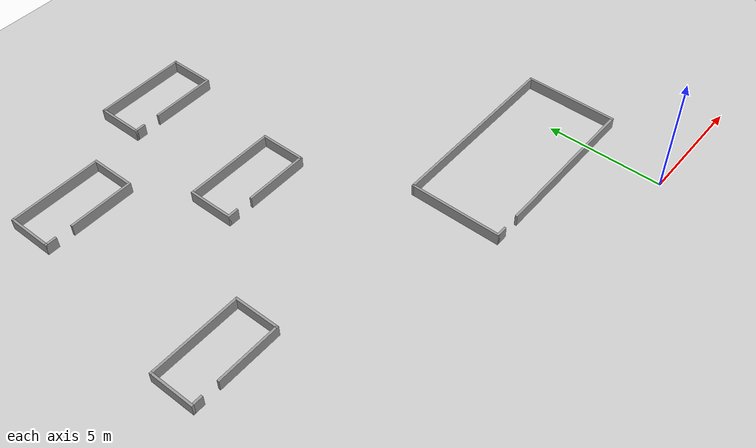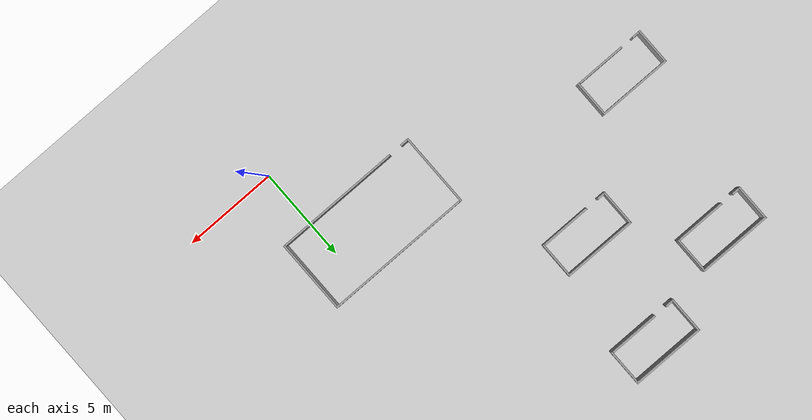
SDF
<sdf version="1.6">
 <world name="default">
  <model name="ground_plane">
   <static>1</static>
   <link name="link">
    <collision name="collision">
     <geometry><plane><normal>0 0 1</normal><size>40 40</size></plane></geometry>
     <surface>
      <contact><collide_bitmask>65535</collide_bitmask></contact>
      <friction><ode><mu>100</mu><mu2>50</mu2></ode></friction>
     </surface>
     <max_contacts>15</max_contacts>
    </collision>
    <visual name="visual">
     <cast_shadows>0</cast_shadows>
     <geometry><plane><normal>0 0 1</normal><size>40 40</size></plane></geometry>
     <material>
      <script><uri>file://media/materials/scripts/gazebo.material</uri><name>Gazebo/Grey</name></script>
     </material>
    </visual>
   </link>
  </model>
  <model name="shape2">
   <pose>-16.3 7.5 0 0 -0 0</pose>
   <link name="Wall_0">
    <collision name="Wall_0_Collision">
     <geometry><box><size>3.98685 0.1 0.5</size></box></geometry>
     <pose>0 0 0.25 0 -0 0</pose>
    </collision>
    <visual name="Wall_0_Visual">
     <pose>0 0 0.25 0 -0 0</pose>
     <geometry><box><size>3.98685 0.1 0.5</size></box></geometry>
     <material>
      <script><uri>file://media/materials/scripts/gazebo.material</uri><name>Gazebo/Grey</name></script>
      <ambient>1 1 1 1</ambient>
     </material>
     <meta><layer>0</layer></meta>
    </visual>
    <pose>0.003288 0.95 0 0 -0 0</pose>
   </link>
   <link name="Wall_1">
    <collision name="Wall_1_Collision">
     <geometry><box><size>2 0.1 0.5</size></box></geometry>
     <pose>0 0 0.25 0 -0 0</pose>
    </collision>
    <visual name="Wall_1_Visual">
     <pose>0 0 0.25 0 -0 0</pose>
     <geometry><box><size>2 0.1 0.5</size></box></geometry>
     <material>
      <script><uri>file://media/materials/scripts/gazebo.material</uri><name>Gazebo/Grey</name></script>
      <ambient>1 1 1 1</ambient>
     </material>
     <meta><layer>0</layer></meta>
    </visual>
    <pose>1.94671 0 0 0 -0 -1.5708</pose>
   </link>
   <link name="Wall_2">
    <collision name="Wall_2_Collision">
     <geometry><box><size>2.8 0.1 0.5</size></box></geometry>
     <pose>0 0 0.25 0 -0 0</pose>
    </collision>
    <visual name="Wall_2_Visual">
     <pose>0 0 0.25 0 -0 0</pose>
     <geometry><box><size>2.8 0.1 0.5</size></box></geometry>
     <material>
      <script><uri>file://media/materials/scripts/gazebo.material</uri><name>Gazebo/Grey</name></script>
      <ambient>1 1 1 1</ambient>
     </material>
     <meta><layer>0</layer></meta>
    </visual>
    <pose>0.596712 -0.95 0 0 -0 3.14159</pose>
   </link>
   <link name="Wall_4">
    <collision name="Wall_4_Collision">
     <geometry><box><size>2 0.1 0.5</size></box></geometry>
     <pose>0 0 0.25 0 -0 0</pose>
    </collision>
    <visual name="Wall_4_Visual">
     <pose>0 0 0.25 0 -0 0</pose>
     <geometry><box><size>2 0.1 0.5</size></box></geometry>
     <material>
      <script><uri>file://media/materials/scripts/gazebo.material</uri><name>Gazebo/Grey</name></script>
      <ambient>1 1 1 1</ambient>
     </material>
     <meta><layer>0</layer></meta>
    </visual>
    <pose>-1.94671 0 0 0 -0 -1.5708</pose>
   </link>
   <link name="Wall_5">
    <collision name="Wall_5_Collision">
     <geometry><box><size>0.5 0.1 0.5</size></box></geometry>
     <pose>0 0 0.25 0 -0 0</pose>
    </collision>
    <visual name="Wall_5_Visual">
     <pose>0 0 0.25 0 -0 0</pose>
     <geometry><box><size>0.5 0.1 0.5</size></box></geometry>
     <material>
      <script><uri>file://media/materials/scripts/gazebo.material</uri><name>Gazebo/Grey</name></script>
      <ambient>1 1 1 1</ambient>
     </material>
     <meta><layer>0</layer></meta>
    </visual>
    <pose>-1.74671 -0.95 0 0 -0 0</pose>
   </link>
   <static>1</static>
  </model>
  <model name="shape3">
   <pose>-2.4 5.1 0 0 -0 0</pose>
   <link name="Wall_11">
    <collision name="Wall_11_Collision">
     <geometry><box><size>4 0.1 0.5</size></box></geometry>
     <pose>0 0 0.25 0 -0 0</pose>
    </collision>
    <visual name="Wall_11_Visual">
     <pose>0 0 0.25 0 -0 0</pose>
     <geometry><box><size>4 0.1 0.5</size></box></geometry>
     <material>
      <script><uri>file://media/materials/scripts/gazebo.material</uri><name>Gazebo/Grey</name></script>
      <ambient>1 1 1 1</ambient>
     </material>
     <meta><layer>0</layer></meta>
    </visual>
    <pose>-3.95 0 0 0 -0 -1.5708</pose>
   </link>
   <link name="Wall_12">
    <collision name="Wall_12_Collision">
     <geometry><box><size>0.5 0.1 0.5</size></box></geometry>
     <pose>0 0 0.25 0 -0 0</pose>
    </collision>
    <visual name="Wall_12_Visual">
     <pose>0 0 0.25 0 -0 0</pose>
     <geometry><box><size>0.5 0.1 0.5</size></box></geometry>
     <material>
      <script><uri>file://media/materials/scripts/gazebo.material</uri><name>Gazebo/Grey</name></script>
      <ambient>1 1 1 1</ambient>
     </material>
     <meta><layer>0</layer></meta>
    </visual>
    <pose>-3.75 -1.95 0 0 -0 0</pose>
   </link>
   <link name="Wall_7">
    <collision name="Wall_7_Collision">
     <geometry><box><size>8 0.1 0.5</size></box></geometry>
     <pose>0 0 0.25 0 -0 0</pose>
    </collision>
    <visual name="Wall_7_Visual">
     <pose>0 0 0.25 0 -0 0</pose>
     <geometry><box><size>8 0.1 0.5</size></box></geometry>
     <material>
      <script><uri>file://media/materials/scripts/gazebo.material</uri><name>Gazebo/Grey</name></script>
      <ambient>1 1 1 1</ambient>
     </material>
     <meta><layer>0</layer></meta>
    </visual>
    <pose>-0 1.95 0 0 -0 0</pose>
   </link>
   <link name="Wall_8">
    <collision name="Wall_8_Collision">
     <geometry><box><size>4 0.1 0.5</size></box></geometry>
     <pose>0 0 0.25 0 -0 0</pose>
    </collision>
    <visual name="Wall_8_Visual">
     <pose>0 0 0.25 0 -0 0</pose>
     <geometry><box><size>4 0.1 0.5</size></box></geometry>
     <material>
      <script><uri>file://media/materials/scripts/gazebo.material</uri><name>Gazebo/Grey</name></script>
      <ambient>1 1 1 1</ambient>
     </material>
     <meta><layer>0</layer></meta>
    </visual>
    <pose>3.95 0 0 0 -0 -1.5708</pose>
   </link>
   <link name="Wall_9">
    <collision name="Wall_9_Collision">
     <geometry><box><size>6.8 0.1 0.5</size></box></geometry>
     <pose>0 0 0.25 0 -0 0</pose>
    </collision>
    <visual name="Wall_9_Visual">
     <pose>0 0 0.25 0 -0 0</pose>
     <geometry><box><size>6.8 0.1 0.5</size></box></geometry>
     <material>
      <script><uri>file://media/materials/scripts/gazebo.material</uri><name>Gazebo/Grey</name></script>
      <ambient>1 1 1 1</ambient>
     </material>
     <meta><layer>0</layer></meta>
    </visual>
    <pose>0.6 -1.95 0 0 -0 3.14159</pose>
   </link>
   <static>1</static>
  </model>
  <model name="shape2">
   <pose>-9.9 12.3 0 0 -0 0</pose>
   <link name="Wall_0">
    <collision name="Wall_0_Collision">
     <geometry><box><size>3.98685 0.1 0.5</size></box></geometry>
     <pose>0 0 0.25 0 -0 0</pose>
    </collision>
    <visual name="Wall_0_Visual">
     <pose>0 0 0.25 0 -0 0</pose>
     <geometry><box><size>3.98685 0.1 0.5</size></box></geometry>
     <material>
      <script><uri>file://media/materials/scripts/gazebo.material</uri><name>Gazebo/Grey</name></script>
      <ambient>1 1 1 1</ambient>
     </material>
     <meta><layer>0</layer></meta>
    </visual>
    <pose>0.003288 0.95 0 0 -0 0</pose>
   </link>
   <link name="Wall_1">
    <collision name="Wall_1_Collision">
     <geometry><box><size>2 0.1 0.5</size></box></geometry>
     <pose>0 0 0.25 0 -0 0</pose>
    </collision>
    <visual name="Wall_1_Visual">
     <pose>0 0 0.25 0 -0 0</pose>
     <geometry><box><size>2 0.1 0.5</size></box></geometry>
     <material>
      <script><uri>file://media/materials/scripts/gazebo.material</uri><name>Gazebo/Grey</name></script>
      <ambient>1 1 1 1</ambient>
     </material>
     <meta><layer>0</layer></meta>
    </visual>
    <pose>1.94671 0 0 0 -0 -1.5708</pose>
   </link>
   <link name="Wall_2">
    <collision name="Wall_2_Collision">
     <geometry><box><size>2.8 0.1 0.5</size></box></geometry>
     <pose>0 0 0.25 0 -0 0</pose>
    </collision>
    <visual name="Wall_2_Visual">
     <pose>0 0 0.25 0 -0 0</pose>
     <geometry><box><size>2.8 0.1 0.5</size></box></geometry>
     <material>
      <script><uri>file://media/materials/scripts/gazebo.material</uri><name>Gazebo/Grey</name></script>
      <ambient>1 1 1 1</ambient>
     </material>
     <meta><layer>0</layer></meta>
    </visual>
    <pose>0.596712 -0.95 0 0 -0 3.14159</pose>
   </link>
   <link name="Wall_4">
    <collision name="Wall_4_Collision">
     <geometry><box><size>2 0.1 0.5</size></box></geometry>
     <pose>0 0 0.25 0 -0 0</pose>
    </collision>
    <visual name="Wall_4_Visual">
     <pose>0 0 0.25 0 -0 0</pose>
     <geometry><box><size>2 0.1 0.5</size></box></geometry>
     <material>
      <script><uri>file://media/materials/scripts/gazebo.material</uri><name>Gazebo/Grey</name></script>
      <ambient>1 1 1 1</ambient>
     </material>
     <meta><layer>0</layer></meta>
    </visual>
    <pose>-1.94671 0 0 0 -0 -1.5708</pose>
   </link>
   <link name="Wall_5">
    <collision name="Wall_5_Collision">
     <geometry><box><size>0.5 0.1 0.5</size></box></geometry>
     <pose>0 0 0.25 0 -0 0</pose>
    </collision>
    <visual name="Wall_5_Visual">
     <pose>0 0 0.25 0 -0 0</pose>
     <geometry><box><size>0.5 0.1 0.5</size></box></geometry>
     <material>
      <script><uri>file://media/materials/scripts/gazebo.material</uri><name>Gazebo/Grey</name></script>
      <ambient>1 1 1 1</ambient>
     </material>
     <meta><layer>0</layer></meta>
    </visual>
    <pose>-1.74671 -0.95 0 0 -0 0</pose>
   </link>
   <static>1</static>
  </model>
  <model name="shape2">
   <pose>-15 16.4 0 0 -0 0</pose>
   <link name="Wall_0">
    <collision name="Wall_0_Collision">
     <geometry><box><size>3.98685 0.1 0.5</size></box></geometry>
     <pose>0 0 0.25 0 -0 0</pose>
    </collision>
    <visual name="Wall_0_Visual">
     <pose>0 0 0.25 0 -0 0</pose>
     <geometry><box><size>3.98685 0.1 0.5</size></box></geometry>
     <material>
      <script><uri>file://media/materials/scripts/gazebo.material</uri><name>Gazebo/Grey</name></script>
      <ambient>1 1 1 1</ambient>
     </material>
     <meta><layer>0</layer></meta>
    </visual>
    <pose>0.003288 0.95 0 0 -0 0</pose>
   </link>
   <link name="Wall_1">
    <collision name="Wall_1_Collision">
     <geometry><box><size>2 0.1 0.5</size></box></geometry>
     <pose>0 0 0.25 0 -0 0</pose>
    </collision>
    <visual name="Wall_1_Visual">
     <pose>0 0 0.25 0 -0 0</pose>
     <geometry><box><size>2 0.1 0.5</size></box></geometry>
     <material>
      <script><uri>file://media/materials/scripts/gazebo.material</uri><name>Gazebo/Grey</name></script>
      <ambient>1 1 1 1</ambient>
     </material>
     <meta><layer>0</layer></meta>
    </visual>
    <pose>1.94671 0 0 0 -0 -1.5708</pose>
   </link>
   <link name="Wall_2">
    <collision name="Wall_2_Collision">
     <geometry><box><size>2.8 0.1 0.5</size></box></geometry>
     <pose>0 0 0.25 0 -0 0</pose>
    </collision>
    <visual name="Wall_2_Visual">
     <pose>0 0 0.25 0 -0 0</pose>
     <geometry><box><size>2.8 0.1 0.5</size></box></geometry>
     <material>
      <script><uri>file://media/materials/scripts/gazebo.material</uri><name>Gazebo/Grey</name></script>
      <ambient>1 1 1 1</ambient>
     </material>
     <meta><layer>0</layer></meta>
    </visual>
    <pose>0.596712 -0.95 0 0 -0 3.14159</pose>
   </link>
   <link name="Wall_4">
    <collision name="Wall_4_Collision">
     <geometry><box><size>2 0.1 0.5</size></box></geometry>
     <pose>0 0 0.25 0 -0 0</pose>
    </collision>
    <visual name="Wall_4_Visual">
     <pose>0 0 0.25 0 -0 0</pose>
     <geometry><box><size>2 0.1 0.5</size></box></geometry>
     <material>
      <script><uri>file://media/materials/scripts/gazebo.material</uri><name>Gazebo/Grey</name></script>
      <ambient>1 1 1 1</ambient>
     </material>
     <meta><layer>0</layer></meta>
    </visual>
    <pose>-1.94671 0 0 0 -0 -1.5708</pose>
   </link>
   <link name="Wall_5">
    <collision name="Wall_5_Collision">
     <geometry><box><size>0.5 0.1 0.5</size></box></geometry>
     <pose>0 0 0.25 0 -0 0</pose>
    </collision>
    <visual name="Wall_5_Visual">
     <pose>0 0 0.25 0 -0 0</pose>
     <geometry><box><size>0.5 0.1 0.5</size></box></geometry>
     <material>
      <script><uri>file://media/materials/scripts/gazebo.material</uri><name>Gazebo/Grey</name></script>
      <ambient>1 1 1 1</ambient>
     </material>
     <meta><layer>0</layer></meta>
    </visual>
    <pose>-1.74671 -0.95 0 0 -0 0</pose>
   </link>
   <static>1</static>
  </model>
  <model name="shape2">
   <pose>-9 18.4 0 0 -0 0</pose>
   <link name="Wall_0">
    <collision name="Wall_0_Collision">
     <geometry><box><size>3.98685 0.1 0.5</size></box></geometry>
     <pose>0 0 0.25 0 -0 0</pose>
    </collision>
    <visual name="Wall_0_Visual">
     <pose>0 0 0.25 0 -0 0</pose>
     <geometry><box><size>3.98685 0.1 0.5</size></box></geometry>
     <material>
      <script><uri>file://media/materials/scripts/gazebo.material</uri><name>Gazebo/Grey</name></script>
      <ambient>1 1 1 1</ambient>
     </material>
     <meta><layer>0</layer></meta>
    </visual>
    <pose>0.003288 0.95 0 0 -0 0</pose>
   </link>
   <link name="Wall_1">
    <collision name="Wall_1_Collision">
     <geometry><box><size>2 0.1 0.5</size></box></geometry>
     <pose>0 0 0.25 0 -0 0</pose>
    </collision>
    <visual name="Wall_1_Visual">
     <pose>0 0 0.25 0 -0 0</pose>
     <geometry><box><size>2 0.1 0.5</size></box></geometry>
     <material>
      <script><uri>file://media/materials/scripts/gazebo.material</uri><name>Gazebo/Grey</name></script>
      <ambient>1 1 1 1</ambient>
     </material>
     <meta><layer>0</layer></meta>
    </visual>
    <pose>1.94671 0 0 0 -0 -1.5708</pose>
   </link>
   <link name="Wall_2">
    <collision name="Wall_2_Collision">
     <geometry><box><size>2.8 0.1 0.5</size></box></geometry>
     <pose>0 0 0.25 0 -0 0</pose>
    </collision>
    <visual name="Wall_2_Visual">
     <pose>0 0 0.25 0 -0 0</pose>
     <geometry><box><size>2.8 0.1 0.5</size></box></geometry>
     <material>
      <script><uri>file://media/materials/scripts/gazebo.material</uri><name>Gazebo/Grey</name></script>
      <ambient>1 1 1 1</ambient>
     </material>
     <meta><layer>0</layer></meta>
    </visual>
    <pose>0.596712 -0.95 0 0 -0 3.14159</pose>
   </link>
   <link name="Wall_4">
    <collision name="Wall_4_Collision">
     <geometry><box><size>2 0.1 0.5</size></box></geometry>
     <pose>0 0 0.25 0 -0 0</pose>
    </collision>
    <visual name="Wall_4_Visual">
     <pose>0 0 0.25 0 -0 0</pose>
     <geometry><box><size>2 0.1 0.5</size></box></geometry>
     <material>
      <script><uri>file://media/materials/scripts/gazebo.material</uri><name>Gazebo/Grey</name></script>
      <ambient>1 1 1 1</ambient>
     </material>
     <meta><layer>0</layer></meta>
    </visual>
    <pose>-1.94671 0 0 0 -0 -1.5708</pose>
   </link>
   <link name="Wall_5">
    <collision name="Wall_5_Collision">
     <geometry><box><size>0.5 0.1 0.5</size></box></geometry>
     <pose>0 0 0.25 0 -0 0</pose>
    </collision>
    <visual name="Wall_5_Visual">
     <pose>0 0 0.25 0 -0 0</pose>
     <geometry><box><size>0.5 0.1 0.5</size></box></geometry>
     <material>
      <script><uri>file://media/materials/scripts/gazebo.material</uri><name>Gazebo/Grey</name></script>
      <ambient>1 1 1 1</ambient>
     </material>
     <meta><layer>0</layer></meta>
    </visual>
    <pose>-1.74671 -0.95 0 0 -0 0</pose>
   </link>
   <static>1</static>
  </model>
 </world>
</sdf>
